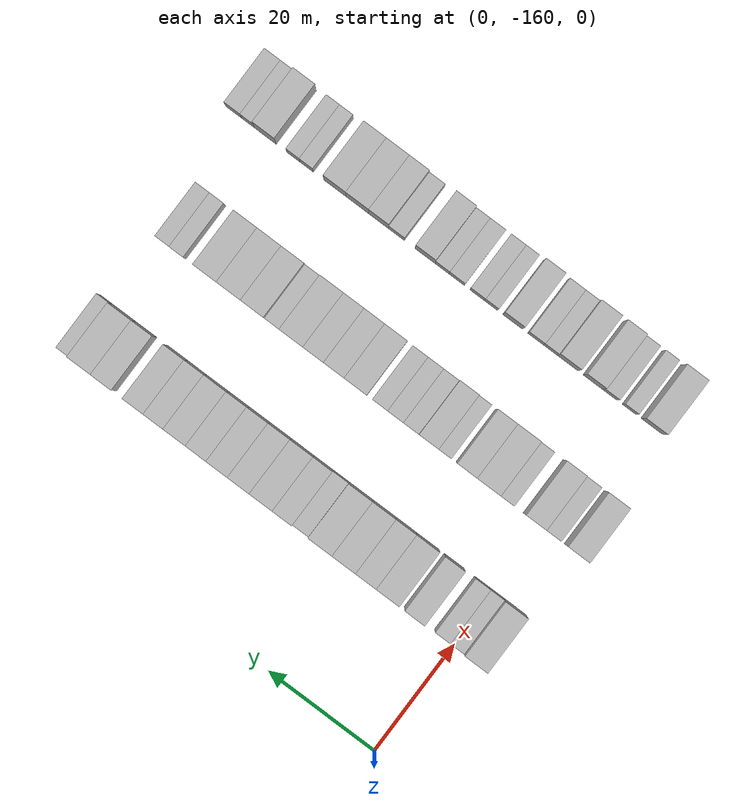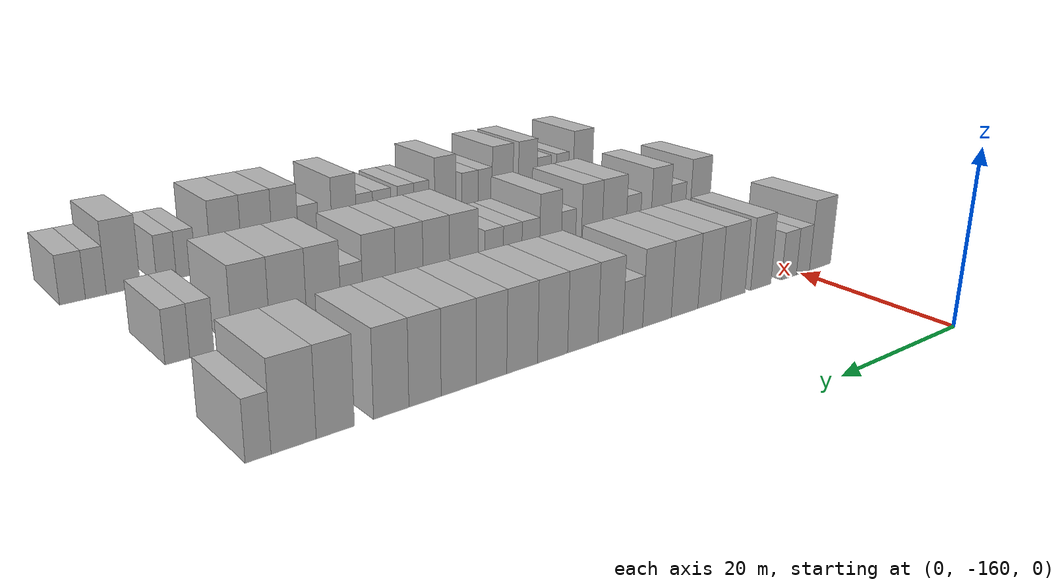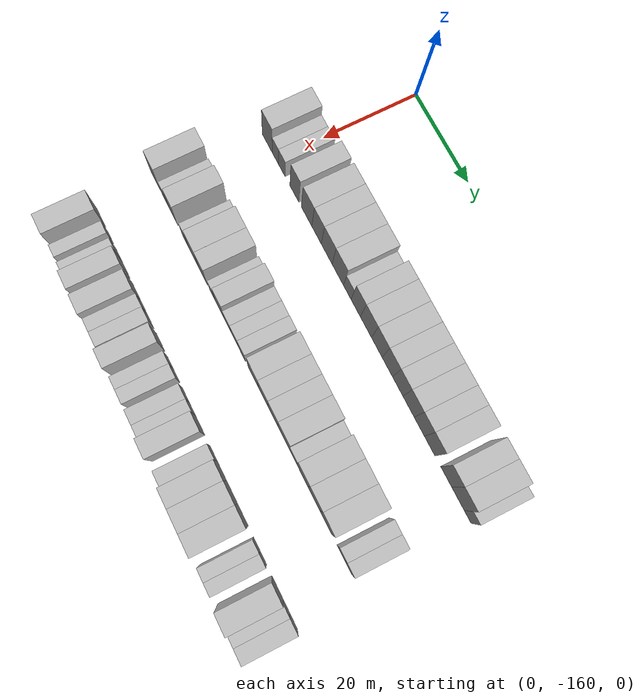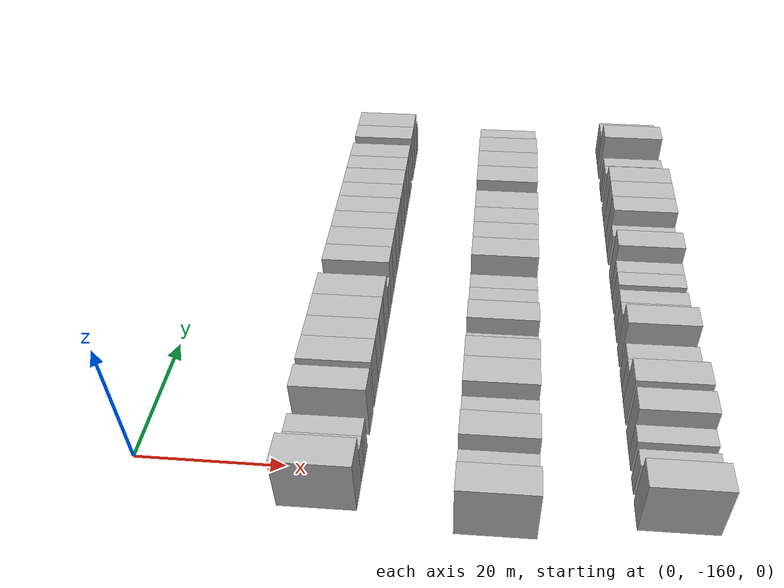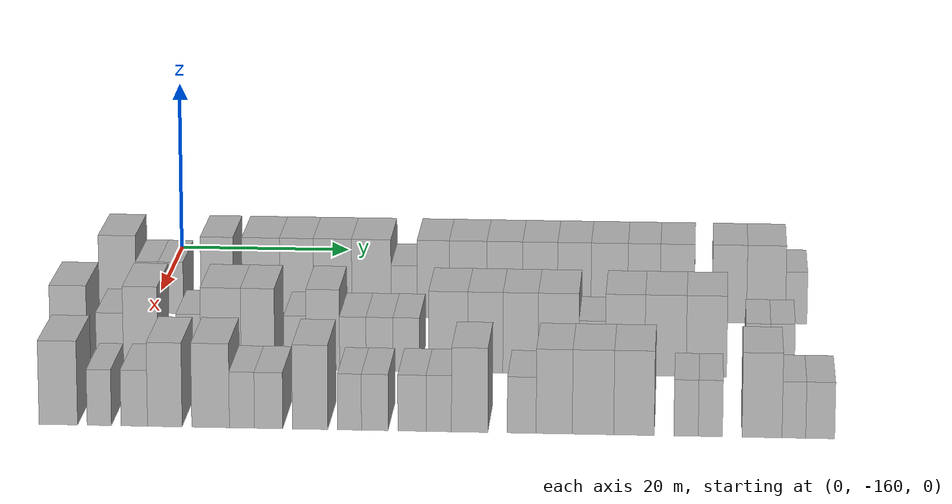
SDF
<sdf version="1.6">
 <world name="default">
  <model name="building_24">
   <static>1</static>
   <pose>25.0000 -163.7393 0 0.000000 0.000000 0.000000</pose>
   <link name="link">
    <pose>0 0 4.50 0 0 0</pose>
    <collision name="collision"><geometry><box><size>10.0000 4.2165 9.0000</size></box></geometry></collision>
    <visual name="visual">
     <cast_shadows>0</cast_shadows>
     <geometry><box><size>10.0000 4.2165 9.0000</size></box></geometry>
     <material>
      <script>
       <uri>model://HANNAS_wall/materials/scripts</uri>
       <uri>model://HANNAS_wall/materials/textures</uri>
       <name>vrc/HANNAS_wall</name>
      </script>
     </material>
    </visual>
   </link>
  </model>
  <model name="building_25">
   <static>1</static>
   <pose>25.0000 -160.3569 0 0.000000 0.000000 0.000000</pose>
   <link name="link">
    <pose>0 0 3.00 0 0 0</pose>
    <collision name="collision"><geometry><box><size>10.0000 2.5483 6.0000</size></box></geometry></collision>
    <visual name="visual">
     <cast_shadows>0</cast_shadows>
     <geometry><box><size>10.0000 2.5483 6.0000</size></box></geometry>
     <material>
      <script>
       <uri>model://HANNAS_wall/materials/scripts</uri>
       <uri>model://HANNAS_wall/materials/textures</uri>
       <name>vrc/HANNAS_wall</name>
      </script>
     </material>
    </visual>
   </link>
  </model>
  <model name="building_26">
   <static>1</static>
   <pose>25.0000 -157.6715 0 0.000000 0.000000 0.000000</pose>
   <link name="link">
    <pose>0 0 3.00 0 0 0</pose>
    <collision name="collision"><geometry><box><size>10.0000 2.8223 6.0000</size></box></geometry></collision>
    <visual name="visual">
     <cast_shadows>0</cast_shadows>
     <geometry><box><size>10.0000 2.8223 6.0000</size></box></geometry>
     <material>
      <script>
       <uri>model://HANNAS_wall/materials/scripts</uri>
       <uri>model://HANNAS_wall/materials/textures</uri>
       <name>vrc/HANNAS_wall</name>
      </script>
     </material>
    </visual>
   </link>
  </model>
  <model name="building_27">
   <static>1</static>
   <pose>25.0000 -152.4122 0 0.000000 0.000000 0.000000</pose>
   <link name="link">
    <pose>0 0 4.50 0 0 0</pose>
    <collision name="collision"><geometry><box><size>10.0000 3.6963 9.0000</size></box></geometry></collision>
    <visual name="visual">
     <cast_shadows>0</cast_shadows>
     <geometry><box><size>10.0000 3.6963 9.0000</size></box></geometry>
     <material>
      <script>
       <uri>model://HANNAS_wall/materials/scripts</uri>
       <uri>model://HANNAS_wall/materials/textures</uri>
       <name>vrc/HANNAS_wall</name>
      </script>
     </material>
    </visual>
   </link>
  </model>
  <model name="building_28">
   <static>1</static>
   <pose>25.0000 -147.4266 0 0.000000 0.000000 0.000000</pose>
   <link name="link">
    <pose>0 0 4.50 0 0 0</pose>
    <collision name="collision"><geometry><box><size>10.0000 4.2749 9.0000</size></box></geometry></collision>
    <visual name="visual">
     <cast_shadows>0</cast_shadows>
     <geometry><box><size>10.0000 4.2749 9.0000</size></box></geometry>
     <material>
      <script>
       <uri>model://HANNAS_wall/materials/scripts</uri>
       <uri>model://HANNAS_wall/materials/textures</uri>
       <name>vrc/HANNAS_wall</name>
      </script>
     </material>
    </visual>
   </link>
  </model>
  <model name="building_29">
   <static>1</static>
   <pose>25.0000 -143.3866 0 0.000000 0.000000 0.000000</pose>
   <link name="link">
    <pose>0 0 4.50 0 0 0</pose>
    <collision name="collision"><geometry><box><size>10.0000 3.8051 9.0000</size></box></geometry></collision>
    <visual name="visual">
     <cast_shadows>0</cast_shadows>
     <geometry><box><size>10.0000 3.8051 9.0000</size></box></geometry>
     <material>
      <script>
       <uri>model://HANNAS_wall/materials/scripts</uri>
       <uri>model://HANNAS_wall/materials/textures</uri>
       <name>vrc/HANNAS_wall</name>
      </script>
     </material>
    </visual>
   </link>
  </model>
  <model name="building_30">
   <static>1</static>
   <pose>25.0000 -139.3176 0 0.000000 0.000000 0.000000</pose>
   <link name="link">
    <pose>0 0 4.50 0 0 0</pose>
    <collision name="collision"><geometry><box><size>10.0000 4.3330 9.0000</size></box></geometry></collision>
    <visual name="visual">
     <cast_shadows>0</cast_shadows>
     <geometry><box><size>10.0000 4.3330 9.0000</size></box></geometry>
     <material>
      <script>
       <uri>model://HANNAS_wall/materials/scripts</uri>
       <uri>model://HANNAS_wall/materials/textures</uri>
       <name>vrc/HANNAS_wall</name>
      </script>
     </material>
    </visual>
   </link>
  </model>
  <model name="building_31">
   <static>1</static>
   <pose>25.0000 -134.9347 0 0.000000 0.000000 0.000000</pose>
   <link name="link">
    <pose>0 0 4.50 0 0 0</pose>
    <collision name="collision"><geometry><box><size>10.0000 4.4328 9.0000</size></box></geometry></collision>
    <visual name="visual">
     <cast_shadows>0</cast_shadows>
     <geometry><box><size>10.0000 4.4328 9.0000</size></box></geometry>
     <material>
      <script>
       <uri>model://HANNAS_wall/materials/scripts</uri>
       <uri>model://HANNAS_wall/materials/textures</uri>
       <name>vrc/HANNAS_wall</name>
      </script>
     </material>
    </visual>
   </link>
  </model>
  <model name="building_32">
   <static>1</static>
   <pose>25.0000 -131.2357 0 0.000000 0.000000 0.000000</pose>
   <link name="link">
    <pose>0 0 3.00 0 0 0</pose>
    <collision name="collision"><geometry><box><size>10.0000 2.9652 6.0000</size></box></geometry></collision>
    <visual name="visual">
     <cast_shadows>0</cast_shadows>
     <geometry><box><size>10.0000 2.9652 6.0000</size></box></geometry>
     <material>
      <script>
       <uri>model://HANNAS_wall/materials/scripts</uri>
       <uri>model://HANNAS_wall/materials/textures</uri>
       <name>vrc/HANNAS_wall</name>
      </script>
     </material>
    </visual>
   </link>
  </model>
  <model name="building_33">
   <static>1</static>
   <pose>25.0000 -127.9492 0 0.000000 0.000000 0.000000</pose>
   <link name="link">
    <pose>0 0 4.50 0 0 0</pose>
    <collision name="collision"><geometry><box><size>10.0000 3.6078 9.0000</size></box></geometry></collision>
    <visual name="visual">
     <cast_shadows>0</cast_shadows>
     <geometry><box><size>10.0000 3.6078 9.0000</size></box></geometry>
     <material>
      <script>
       <uri>model://HANNAS_wall/materials/scripts</uri>
       <uri>model://HANNAS_wall/materials/textures</uri>
       <name>vrc/HANNAS_wall</name>
      </script>
     </material>
    </visual>
   </link>
  </model>
  <model name="building_34">
   <static>1</static>
   <pose>25.0000 -124.0263 0 0.000000 0.000000 0.000000</pose>
   <link name="link">
    <pose>0 0 4.50 0 0 0</pose>
    <collision name="collision"><geometry><box><size>10.0000 4.2380 9.0000</size></box></geometry></collision>
    <visual name="visual">
     <cast_shadows>0</cast_shadows>
     <geometry><box><size>10.0000 4.2380 9.0000</size></box></geometry>
     <material>
      <script>
       <uri>model://HANNAS_wall/materials/scripts</uri>
       <uri>model://HANNAS_wall/materials/textures</uri>
       <name>vrc/HANNAS_wall</name>
      </script>
     </material>
    </visual>
   </link>
  </model>
  <model name="building_35">
   <static>1</static>
   <pose>25.0000 -119.8935 0 0.000000 0.000000 0.000000</pose>
   <link name="link">
    <pose>0 0 4.50 0 0 0</pose>
    <collision name="collision"><geometry><box><size>10.0000 4.0276 9.0000</size></box></geometry></collision>
    <visual name="visual">
     <cast_shadows>0</cast_shadows>
     <geometry><box><size>10.0000 4.0276 9.0000</size></box></geometry>
     <material>
      <script>
       <uri>model://HANNAS_wall/materials/scripts</uri>
       <uri>model://HANNAS_wall/materials/textures</uri>
       <name>vrc/HANNAS_wall</name>
      </script>
     </material>
    </visual>
   </link>
  </model>
  <model name="building_36">
   <static>1</static>
   <pose>25.0000 -115.9105 0 0.000000 0.000000 0.000000</pose>
   <link name="link">
    <pose>0 0 4.50 0 0 0</pose>
    <collision name="collision"><geometry><box><size>10.0000 3.9385 9.0000</size></box></geometry></collision>
    <visual name="visual">
     <cast_shadows>0</cast_shadows>
     <geometry><box><size>10.0000 3.9385 9.0000</size></box></geometry>
     <material>
      <script>
       <uri>model://HANNAS_wall/materials/scripts</uri>
       <uri>model://HANNAS_wall/materials/textures</uri>
       <name>vrc/HANNAS_wall</name>
      </script>
     </material>
    </visual>
   </link>
  </model>
  <model name="building_37">
   <static>1</static>
   <pose>25.0000 -112.0548 0 0.000000 0.000000 0.000000</pose>
   <link name="link">
    <pose>0 0 4.50 0 0 0</pose>
    <collision name="collision"><geometry><box><size>10.0000 3.7729 9.0000</size></box></geometry></collision>
    <visual name="visual">
     <cast_shadows>0</cast_shadows>
     <geometry><box><size>10.0000 3.7729 9.0000</size></box></geometry>
     <material>
      <script>
       <uri>model://HANNAS_wall/materials/scripts</uri>
       <uri>model://HANNAS_wall/materials/textures</uri>
       <name>vrc/HANNAS_wall</name>
      </script>
     </material>
    </visual>
   </link>
  </model>
  <model name="building_38">
   <static>1</static>
   <pose>25.0000 -108.1041 0 0.000000 0.000000 0.000000</pose>
   <link name="link">
    <pose>0 0 4.50 0 0 0</pose>
    <collision name="collision"><geometry><box><size>10.0000 4.1284 9.0000</size></box></geometry></collision>
    <visual name="visual">
     <cast_shadows>0</cast_shadows>
     <geometry><box><size>10.0000 4.1284 9.0000</size></box></geometry>
     <material>
      <script>
       <uri>model://HANNAS_wall/materials/scripts</uri>
       <uri>model://HANNAS_wall/materials/textures</uri>
       <name>vrc/HANNAS_wall</name>
      </script>
     </material>
    </visual>
   </link>
  </model>
  <model name="building_39">
   <static>1</static>
   <pose>25.0000 -104.2180 0 0.000000 0.000000 0.000000</pose>
   <link name="link">
    <pose>0 0 4.50 0 0 0</pose>
    <collision name="collision"><geometry><box><size>10.0000 3.6439 9.0000</size></box></geometry></collision>
    <visual name="visual">
     <cast_shadows>0</cast_shadows>
     <geometry><box><size>10.0000 3.6439 9.0000</size></box></geometry>
     <material>
      <script>
       <uri>model://HANNAS_wall/materials/scripts</uri>
       <uri>model://HANNAS_wall/materials/textures</uri>
       <name>vrc/HANNAS_wall</name>
      </script>
     </material>
    </visual>
   </link>
  </model>
  <model name="building_40">
   <static>1</static>
   <pose>25.0000 -100.4765 0 0.000000 0.000000 0.000000</pose>
   <link name="link">
    <pose>0 0 4.50 0 0 0</pose>
    <collision name="collision"><geometry><box><size>10.0000 3.8391 9.0000</size></box></geometry></collision>
    <visual name="visual">
     <cast_shadows>0</cast_shadows>
     <geometry><box><size>10.0000 3.8391 9.0000</size></box></geometry>
     <material>
      <script>
       <uri>model://HANNAS_wall/materials/scripts</uri>
       <uri>model://HANNAS_wall/materials/textures</uri>
       <name>vrc/HANNAS_wall</name>
      </script>
     </material>
    </visual>
   </link>
  </model>
  <model name="building_41">
   <static>1</static>
   <pose>25.0000 -94.6228 0 0.000000 0.000000 0.000000</pose>
   <link name="link">
    <pose>0 0 4.50 0 0 0</pose>
    <collision name="collision"><geometry><box><size>10.0000 3.8683 9.0000</size></box></geometry></collision>
    <visual name="visual">
     <cast_shadows>0</cast_shadows>
     <geometry><box><size>10.0000 3.8683 9.0000</size></box></geometry>
     <material>
      <script>
       <uri>model://HANNAS_wall/materials/scripts</uri>
       <uri>model://HANNAS_wall/materials/textures</uri>
       <name>vrc/HANNAS_wall</name>
      </script>
     </material>
    </visual>
   </link>
  </model>
  <model name="building_42">
   <static>1</static>
   <pose>25.0000 -90.5126 0 0.000000 0.000000 0.000000</pose>
   <link name="link">
    <pose>0 0 4.50 0 0 0</pose>
    <collision name="collision"><geometry><box><size>10.0000 4.3520 9.0000</size></box></geometry></collision>
    <visual name="visual">
     <cast_shadows>0</cast_shadows>
     <geometry><box><size>10.0000 4.3520 9.0000</size></box></geometry>
     <material>
      <script>
       <uri>model://HANNAS_wall/materials/scripts</uri>
       <uri>model://HANNAS_wall/materials/textures</uri>
       <name>vrc/HANNAS_wall</name>
      </script>
     </material>
    </visual>
   </link>
  </model>
  <model name="building_43">
   <static>1</static>
   <pose>25.0000 -87.1313 0 0.000000 0.000000 0.000000</pose>
   <link name="link">
    <pose>0 0 3.00 0 0 0</pose>
    <collision name="collision"><geometry><box><size>10.0000 2.4106 6.0000</size></box></geometry></collision>
    <visual name="visual">
     <cast_shadows>0</cast_shadows>
     <geometry><box><size>10.0000 2.4106 6.0000</size></box></geometry>
     <material>
      <script>
       <uri>model://HANNAS_wall/materials/scripts</uri>
       <uri>model://HANNAS_wall/materials/textures</uri>
       <name>vrc/HANNAS_wall</name>
      </script>
     </material>
    </visual>
   </link>
  </model>
  <model name="building_149">
   <static>1</static>
   <pose>47.0000 -166.1068 0 0.000000 0.000000 0.000000</pose>
   <link name="link">
    <pose>0 0 4.50 0 0 0</pose>
    <collision name="collision"><geometry><box><size>10.0000 4.0091 9.0000</size></box></geometry></collision>
    <visual name="visual">
     <cast_shadows>0</cast_shadows>
     <geometry><box><size>10.0000 4.0091 9.0000</size></box></geometry>
     <material>
      <script>
       <uri>model://HANNAS_wall/materials/scripts</uri>
       <uri>model://HANNAS_wall/materials/textures</uri>
       <name>vrc/HANNAS_wall</name>
      </script>
     </material>
    </visual>
   </link>
  </model>
  <model name="building_150">
   <static>1</static>
   <pose>47.0000 -161.6256 0 0.000000 0.000000 0.000000</pose>
   <link name="link">
    <pose>0 0 3.00 0 0 0</pose>
    <collision name="collision"><geometry><box><size>10.0000 2.9534 6.0000</size></box></geometry></collision>
    <visual name="visual">
     <cast_shadows>0</cast_shadows>
     <geometry><box><size>10.0000 2.9534 6.0000</size></box></geometry>
     <material>
      <script>
       <uri>model://HANNAS_wall/materials/scripts</uri>
       <uri>model://HANNAS_wall/materials/textures</uri>
       <name>vrc/HANNAS_wall</name>
      </script>
     </material>
    </visual>
   </link>
  </model>
  <model name="building_151">
   <static>1</static>
   <pose>47.0000 -158.2668 0 0.000000 0.000000 0.000000</pose>
   <link name="link">
    <pose>0 0 4.50 0 0 0</pose>
    <collision name="collision"><geometry><box><size>10.0000 3.7643 9.0000</size></box></geometry></collision>
    <visual name="visual">
     <cast_shadows>0</cast_shadows>
     <geometry><box><size>10.0000 3.7643 9.0000</size></box></geometry>
     <material>
      <script>
       <uri>model://HANNAS_wall/materials/scripts</uri>
       <uri>model://HANNAS_wall/materials/textures</uri>
       <name>vrc/HANNAS_wall</name>
      </script>
     </material>
    </visual>
   </link>
  </model>
  <model name="building_152">
   <static>1</static>
   <pose>47.0000 -153.0513 0 0.000000 0.000000 0.000000</pose>
   <link name="link">
    <pose>0 0 3.00 0 0 0</pose>
    <collision name="collision"><geometry><box><size>10.0000 2.6667 6.0000</size></box></geometry></collision>
    <visual name="visual">
     <cast_shadows>0</cast_shadows>
     <geometry><box><size>10.0000 2.6667 6.0000</size></box></geometry>
     <material>
      <script>
       <uri>model://HANNAS_wall/materials/scripts</uri>
       <uri>model://HANNAS_wall/materials/textures</uri>
       <name>vrc/HANNAS_wall</name>
      </script>
     </material>
    </visual>
   </link>
  </model>
  <model name="building_153">
   <static>1</static>
   <pose>47.0000 -149.5357 0 0.000000 0.000000 0.000000</pose>
   <link name="link">
    <pose>0 0 4.50 0 0 0</pose>
    <collision name="collision"><geometry><box><size>10.0000 4.3645 9.0000</size></box></geometry></collision>
    <visual name="visual">
     <cast_shadows>0</cast_shadows>
     <geometry><box><size>10.0000 4.3645 9.0000</size></box></geometry>
     <material>
      <script>
       <uri>model://HANNAS_wall/materials/scripts</uri>
       <uri>model://HANNAS_wall/materials/textures</uri>
       <name>vrc/HANNAS_wall</name>
      </script>
     </material>
    </visual>
   </link>
  </model>
  <model name="building_154">
   <static>1</static>
   <pose>47.0000 -145.5294 0 0.000000 0.000000 0.000000</pose>
   <link name="link">
    <pose>0 0 4.50 0 0 0</pose>
    <collision name="collision"><geometry><box><size>10.0000 3.6480 9.0000</size></box></geometry></collision>
    <visual name="visual">
     <cast_shadows>0</cast_shadows>
     <geometry><box><size>10.0000 3.6480 9.0000</size></box></geometry>
     <material>
      <script>
       <uri>model://HANNAS_wall/materials/scripts</uri>
       <uri>model://HANNAS_wall/materials/textures</uri>
       <name>vrc/HANNAS_wall</name>
      </script>
     </material>
    </visual>
   </link>
  </model>
  <model name="building_155">
   <static>1</static>
   <pose>47.0000 -141.4897 0 0.000000 0.000000 0.000000</pose>
   <link name="link">
    <pose>0 0 3.00 0 0 0</pose>
    <collision name="collision"><geometry><box><size>10.0000 2.4312 6.0000</size></box></geometry></collision>
    <visual name="visual">
     <cast_shadows>0</cast_shadows>
     <geometry><box><size>10.0000 2.4312 6.0000</size></box></geometry>
     <material>
      <script>
       <uri>model://HANNAS_wall/materials/scripts</uri>
       <uri>model://HANNAS_wall/materials/textures</uri>
       <name>vrc/HANNAS_wall</name>
      </script>
     </material>
    </visual>
   </link>
  </model>
  <model name="building_156">
   <static>1</static>
   <pose>47.0000 -138.4733 0 0.000000 0.000000 0.000000</pose>
   <link name="link">
    <pose>0 0 4.50 0 0 0</pose>
    <collision name="collision"><geometry><box><size>10.0000 3.6016 9.0000</size></box></geometry></collision>
    <visual name="visual">
     <cast_shadows>0</cast_shadows>
     <geometry><box><size>10.0000 3.6016 9.0000</size></box></geometry>
     <material>
      <script>
       <uri>model://HANNAS_wall/materials/scripts</uri>
       <uri>model://HANNAS_wall/materials/textures</uri>
       <name>vrc/HANNAS_wall</name>
      </script>
     </material>
    </visual>
   </link>
  </model>
  <model name="building_157">
   <static>1</static>
   <pose>47.0000 -135.2357 0 0.000000 0.000000 0.000000</pose>
   <link name="link">
    <pose>0 0 3.00 0 0 0</pose>
    <collision name="collision"><geometry><box><size>10.0000 2.8735 6.0000</size></box></geometry></collision>
    <visual name="visual">
     <cast_shadows>0</cast_shadows>
     <geometry><box><size>10.0000 2.8735 6.0000</size></box></geometry>
     <material>
      <script>
       <uri>model://HANNAS_wall/materials/scripts</uri>
       <uri>model://HANNAS_wall/materials/textures</uri>
       <name>vrc/HANNAS_wall</name>
      </script>
     </material>
    </visual>
   </link>
  </model>
  <model name="building_158">
   <static>1</static>
   <pose>47.0000 -132.3403 0 0.000000 0.000000 0.000000</pose>
   <link name="link">
    <pose>0 0 3.00 0 0 0</pose>
    <collision name="collision"><geometry><box><size>10.0000 2.9173 6.0000</size></box></geometry></collision>
    <visual name="visual">
     <cast_shadows>0</cast_shadows>
     <geometry><box><size>10.0000 2.9173 6.0000</size></box></geometry>
     <material>
      <script>
       <uri>model://HANNAS_wall/materials/scripts</uri>
       <uri>model://HANNAS_wall/materials/textures</uri>
       <name>vrc/HANNAS_wall</name>
      </script>
     </material>
    </visual>
   </link>
  </model>
  <model name="building_159">
   <static>1</static>
   <pose>47.0000 -129.4545 0 0.000000 0.000000 0.000000</pose>
   <link name="link">
    <pose>0 0 3.00 0 0 0</pose>
    <collision name="collision"><geometry><box><size>10.0000 2.8545 6.0000</size></box></geometry></collision>
    <visual name="visual">
     <cast_shadows>0</cast_shadows>
     <geometry><box><size>10.0000 2.8545 6.0000</size></box></geometry>
     <material>
      <script>
       <uri>model://HANNAS_wall/materials/scripts</uri>
       <uri>model://HANNAS_wall/materials/textures</uri>
       <name>vrc/HANNAS_wall</name>
      </script>
     </material>
    </visual>
   </link>
  </model>
  <model name="building_160">
   <static>1</static>
   <pose>47.0000 -124.9225 0 0.000000 0.000000 0.000000</pose>
   <link name="link">
    <pose>0 0 4.50 0 0 0</pose>
    <collision name="collision"><geometry><box><size>10.0000 4.2095 9.0000</size></box></geometry></collision>
    <visual name="visual">
     <cast_shadows>0</cast_shadows>
     <geometry><box><size>10.0000 4.2095 9.0000</size></box></geometry>
     <material>
      <script>
       <uri>model://HANNAS_wall/materials/scripts</uri>
       <uri>model://HANNAS_wall/materials/textures</uri>
       <name>vrc/HANNAS_wall</name>
      </script>
     </material>
    </visual>
   </link>
  </model>
  <model name="building_161">
   <static>1</static>
   <pose>47.0000 -120.9241 0 0.000000 0.000000 0.000000</pose>
   <link name="link">
    <pose>0 0 4.50 0 0 0</pose>
    <collision name="collision"><geometry><box><size>10.0000 3.7872 9.0000</size></box></geometry></collision>
    <visual name="visual">
     <cast_shadows>0</cast_shadows>
     <geometry><box><size>10.0000 3.7872 9.0000</size></box></geometry>
     <material>
      <script>
       <uri>model://HANNAS_wall/materials/scripts</uri>
       <uri>model://HANNAS_wall/materials/textures</uri>
       <name>vrc/HANNAS_wall</name>
      </script>
     </material>
    </visual>
   </link>
  </model>
  <model name="building_162">
   <static>1</static>
   <pose>47.0000 -117.1334 0 0.000000 0.000000 0.000000</pose>
   <link name="link">
    <pose>0 0 4.50 0 0 0</pose>
    <collision name="collision"><geometry><box><size>10.0000 3.7942 9.0000</size></box></geometry></collision>
    <visual name="visual">
     <cast_shadows>0</cast_shadows>
     <geometry><box><size>10.0000 3.7942 9.0000</size></box></geometry>
     <material>
      <script>
       <uri>model://HANNAS_wall/materials/scripts</uri>
       <uri>model://HANNAS_wall/materials/textures</uri>
       <name>vrc/HANNAS_wall</name>
      </script>
     </material>
    </visual>
   </link>
  </model>
  <model name="building_163">
   <static>1</static>
   <pose>47.0000 -113.0435 0 0.000000 0.000000 0.000000</pose>
   <link name="link">
    <pose>0 0 4.50 0 0 0</pose>
    <collision name="collision"><geometry><box><size>10.0000 4.3855 9.0000</size></box></geometry></collision>
    <visual name="visual">
     <cast_shadows>0</cast_shadows>
     <geometry><box><size>10.0000 4.3855 9.0000</size></box></geometry>
     <material>
      <script>
       <uri>model://HANNAS_wall/materials/scripts</uri>
       <uri>model://HANNAS_wall/materials/textures</uri>
       <name>vrc/HANNAS_wall</name>
      </script>
     </material>
    </visual>
   </link>
  </model>
  <model name="building_164">
   <static>1</static>
   <pose>47.0000 -109.4272 0 0.000000 0.000000 0.000000</pose>
   <link name="link">
    <pose>0 0 3.00 0 0 0</pose>
    <collision name="collision"><geometry><box><size>10.0000 2.8473 6.0000</size></box></geometry></collision>
    <visual name="visual">
     <cast_shadows>0</cast_shadows>
     <geometry><box><size>10.0000 2.8473 6.0000</size></box></geometry>
     <material>
      <script>
       <uri>model://HANNAS_wall/materials/scripts</uri>
       <uri>model://HANNAS_wall/materials/textures</uri>
       <name>vrc/HANNAS_wall</name>
      </script>
     </material>
    </visual>
   </link>
  </model>
  <model name="building_165">
   <static>1</static>
   <pose>47.0000 -105.8783 0 0.000000 0.000000 0.000000</pose>
   <link name="link">
    <pose>0 0 4.50 0 0 0</pose>
    <collision name="collision"><geometry><box><size>10.0000 4.2505 9.0000</size></box></geometry></collision>
    <visual name="visual">
     <cast_shadows>0</cast_shadows>
     <geometry><box><size>10.0000 4.2505 9.0000</size></box></geometry>
     <material>
      <script>
       <uri>model://HANNAS_wall/materials/scripts</uri>
       <uri>model://HANNAS_wall/materials/textures</uri>
       <name>vrc/HANNAS_wall</name>
      </script>
     </material>
    </visual>
   </link>
  </model>
  <model name="building_166">
   <static>1</static>
   <pose>47.0000 -101.5323 0 0.000000 0.000000 0.000000</pose>
   <link name="link">
    <pose>0 0 4.50 0 0 0</pose>
    <collision name="collision"><geometry><box><size>10.0000 4.4415 9.0000</size></box></geometry></collision>
    <visual name="visual">
     <cast_shadows>0</cast_shadows>
     <geometry><box><size>10.0000 4.4415 9.0000</size></box></geometry>
     <material>
      <script>
       <uri>model://HANNAS_wall/materials/scripts</uri>
       <uri>model://HANNAS_wall/materials/textures</uri>
       <name>vrc/HANNAS_wall</name>
      </script>
     </material>
    </visual>
   </link>
  </model>
  <model name="building_167">
   <static>1</static>
   <pose>47.0000 -97.1389 0 0.000000 0.000000 0.000000</pose>
   <link name="link">
    <pose>0 0 4.50 0 0 0</pose>
    <collision name="collision"><geometry><box><size>10.0000 4.3454 9.0000</size></box></geometry></collision>
    <visual name="visual">
     <cast_shadows>0</cast_shadows>
     <geometry><box><size>10.0000 4.3454 9.0000</size></box></geometry>
     <material>
      <script>
       <uri>model://HANNAS_wall/materials/scripts</uri>
       <uri>model://HANNAS_wall/materials/textures</uri>
       <name>vrc/HANNAS_wall</name>
      </script>
     </material>
    </visual>
   </link>
  </model>
  <model name="building_168">
   <static>1</static>
   <pose>47.0000 -91.6483 0 0.000000 0.000000 0.000000</pose>
   <link name="link">
    <pose>0 0 3.00 0 0 0</pose>
    <collision name="collision"><geometry><box><size>10.0000 2.6358 6.0000</size></box></geometry></collision>
    <visual name="visual">
     <cast_shadows>0</cast_shadows>
     <geometry><box><size>10.0000 2.6358 6.0000</size></box></geometry>
     <material>
      <script>
       <uri>model://HANNAS_wall/materials/scripts</uri>
       <uri>model://HANNAS_wall/materials/textures</uri>
       <name>vrc/HANNAS_wall</name>
      </script>
     </material>
    </visual>
   </link>
  </model>
  <model name="building_169">
   <static>1</static>
   <pose>47.0000 -89.0202 0 0.000000 0.000000 0.000000</pose>
   <link name="link">
    <pose>0 0 3.00 0 0 0</pose>
    <collision name="collision"><geometry><box><size>10.0000 2.6204 6.0000</size></box></geometry></collision>
    <visual name="visual">
     <cast_shadows>0</cast_shadows>
     <geometry><box><size>10.0000 2.6204 6.0000</size></box></geometry>
     <material>
      <script>
       <uri>model://HANNAS_wall/materials/scripts</uri>
       <uri>model://HANNAS_wall/materials/textures</uri>
       <name>vrc/HANNAS_wall</name>
      </script>
     </material>
    </visual>
   </link>
  </model>
  <model name="building_271">
   <static>1</static>
   <pose>69.0000 -163.9866 0 0.000000 0.000000 0.000000</pose>
   <link name="link">
    <pose>0 0 4.50 0 0 0</pose>
    <collision name="collision"><geometry><box><size>10.0000 4.0088 9.0000</size></box></geometry></collision>
    <visual name="visual">
     <cast_shadows>0</cast_shadows>
     <geometry><box><size>10.0000 4.0088 9.0000</size></box></geometry>
     <material>
      <script>
       <uri>model://HANNAS_wall/materials/scripts</uri>
       <uri>model://HANNAS_wall/materials/textures</uri>
       <name>vrc/HANNAS_wall</name>
      </script>
     </material>
    </visual>
   </link>
  </model>
  <model name="building_272">
   <static>1</static>
   <pose>69.0000 -159.7208 0 0.000000 0.000000 0.000000</pose>
   <link name="link">
    <pose>0 0 3.00 0 0 0</pose>
    <collision name="collision"><geometry><box><size>10.0000 2.5230 6.0000</size></box></geometry></collision>
    <visual name="visual">
     <cast_shadows>0</cast_shadows>
     <geometry><box><size>10.0000 2.5230 6.0000</size></box></geometry>
     <material>
      <script>
       <uri>model://HANNAS_wall/materials/scripts</uri>
       <uri>model://HANNAS_wall/materials/textures</uri>
       <name>vrc/HANNAS_wall</name>
      </script>
     </material>
    </visual>
   </link>
  </model>
  <model name="building_273">
   <static>1</static>
   <pose>69.0000 -156.0854 0 0.000000 0.000000 0.000000</pose>
   <link name="link">
    <pose>0 0 3.00 0 0 0</pose>
    <collision name="collision"><geometry><box><size>10.0000 2.7477 6.0000</size></box></geometry></collision>
    <visual name="visual">
     <cast_shadows>0</cast_shadows>
     <geometry><box><size>10.0000 2.7477 6.0000</size></box></geometry>
     <material>
      <script>
       <uri>model://HANNAS_wall/materials/scripts</uri>
       <uri>model://HANNAS_wall/materials/textures</uri>
       <name>vrc/HANNAS_wall</name>
      </script>
     </material>
    </visual>
   </link>
  </model>
  <model name="building_274">
   <static>1</static>
   <pose>69.0000 -152.9113 0 0.000000 0.000000 0.000000</pose>
   <link name="link">
    <pose>0 0 4.50 0 0 0</pose>
    <collision name="collision"><geometry><box><size>10.0000 3.6006 9.0000</size></box></geometry></collision>
    <visual name="visual">
     <cast_shadows>0</cast_shadows>
     <geometry><box><size>10.0000 3.6006 9.0000</size></box></geometry>
     <material>
      <script>
       <uri>model://HANNAS_wall/materials/scripts</uri>
       <uri>model://HANNAS_wall/materials/textures</uri>
       <name>vrc/HANNAS_wall</name>
      </script>
     </material>
    </visual>
   </link>
  </model>
  <model name="building_275">
   <static>1</static>
   <pose>69.0000 -148.1607 0 0.000000 0.000000 0.000000</pose>
   <link name="link">
    <pose>0 0 4.50 0 0 0</pose>
    <collision name="collision"><geometry><box><size>10.0000 3.9004 9.0000</size></box></geometry></collision>
    <visual name="visual">
     <cast_shadows>0</cast_shadows>
     <geometry><box><size>10.0000 3.9004 9.0000</size></box></geometry>
     <material>
      <script>
       <uri>model://HANNAS_wall/materials/scripts</uri>
       <uri>model://HANNAS_wall/materials/textures</uri>
       <name>vrc/HANNAS_wall</name>
      </script>
     </material>
    </visual>
   </link>
  </model>
  <model name="building_276">
   <static>1</static>
   <pose>69.0000 -144.9085 0 0.000000 0.000000 0.000000</pose>
   <link name="link">
    <pose>0 0 3.00 0 0 0</pose>
    <collision name="collision"><geometry><box><size>10.0000 2.6039 6.0000</size></box></geometry></collision>
    <visual name="visual">
     <cast_shadows>0</cast_shadows>
     <geometry><box><size>10.0000 2.6039 6.0000</size></box></geometry>
     <material>
      <script>
       <uri>model://HANNAS_wall/materials/scripts</uri>
       <uri>model://HANNAS_wall/materials/textures</uri>
       <name>vrc/HANNAS_wall</name>
      </script>
     </material>
    </visual>
   </link>
  </model>
  <model name="building_277">
   <static>1</static>
   <pose>69.0000 -142.1445 0 0.000000 0.000000 0.000000</pose>
   <link name="link">
    <pose>0 0 3.00 0 0 0</pose>
    <collision name="collision"><geometry><box><size>10.0000 2.9242 6.0000</size></box></geometry></collision>
    <visual name="visual">
     <cast_shadows>0</cast_shadows>
     <geometry><box><size>10.0000 2.9242 6.0000</size></box></geometry>
     <material>
      <script>
       <uri>model://HANNAS_wall/materials/scripts</uri>
       <uri>model://HANNAS_wall/materials/textures</uri>
       <name>vrc/HANNAS_wall</name>
      </script>
     </material>
    </visual>
   </link>
  </model>
  <model name="building_278">
   <static>1</static>
   <pose>69.0000 -137.8465 0 0.000000 0.000000 0.000000</pose>
   <link name="link">
    <pose>0 0 4.50 0 0 0</pose>
    <collision name="collision"><geometry><box><size>10.0000 3.6718 9.0000</size></box></geometry></collision>
    <visual name="visual">
     <cast_shadows>0</cast_shadows>
     <geometry><box><size>10.0000 3.6718 9.0000</size></box></geometry>
     <material>
      <script>
       <uri>model://HANNAS_wall/materials/scripts</uri>
       <uri>model://HANNAS_wall/materials/textures</uri>
       <name>vrc/HANNAS_wall</name>
      </script>
     </material>
    </visual>
   </link>
  </model>
  <model name="building_279">
   <static>1</static>
   <pose>69.0000 -133.7771 0 0.000000 0.000000 0.000000</pose>
   <link name="link">
    <pose>0 0 3.00 0 0 0</pose>
    <collision name="collision"><geometry><box><size>10.0000 2.4670 6.0000</size></box></geometry></collision>
    <visual name="visual">
     <cast_shadows>0</cast_shadows>
     <geometry><box><size>10.0000 2.4670 6.0000</size></box></geometry>
     <material>
      <script>
       <uri>model://HANNAS_wall/materials/scripts</uri>
       <uri>model://HANNAS_wall/materials/textures</uri>
       <name>vrc/HANNAS_wall</name>
      </script>
     </material>
    </visual>
   </link>
  </model>
  <model name="building_280">
   <static>1</static>
   <pose>69.0000 -131.1667 0 0.000000 0.000000 0.000000</pose>
   <link name="link">
    <pose>0 0 3.00 0 0 0</pose>
    <collision name="collision"><geometry><box><size>10.0000 2.7538 6.0000</size></box></geometry></collision>
    <visual name="visual">
     <cast_shadows>0</cast_shadows>
     <geometry><box><size>10.0000 2.7538 6.0000</size></box></geometry>
     <material>
      <script>
       <uri>model://HANNAS_wall/materials/scripts</uri>
       <uri>model://HANNAS_wall/materials/textures</uri>
       <name>vrc/HANNAS_wall</name>
      </script>
     </material>
    </visual>
   </link>
  </model>
  <model name="building_281">
   <static>1</static>
   <pose>69.0000 -127.3319 0 0.000000 0.000000 0.000000</pose>
   <link name="link">
    <pose>0 0 3.00 0 0 0</pose>
    <collision name="collision"><geometry><box><size>10.0000 2.9158 6.0000</size></box></geometry></collision>
    <visual name="visual">
     <cast_shadows>0</cast_shadows>
     <geometry><box><size>10.0000 2.9158 6.0000</size></box></geometry>
     <material>
      <script>
       <uri>model://HANNAS_wall/materials/scripts</uri>
       <uri>model://HANNAS_wall/materials/textures</uri>
       <name>vrc/HANNAS_wall</name>
      </script>
     </material>
    </visual>
   </link>
  </model>
  <model name="building_282">
   <static>1</static>
   <pose>69.0000 -124.5681 0 0.000000 0.000000 0.000000</pose>
   <link name="link">
    <pose>0 0 3.00 0 0 0</pose>
    <collision name="collision"><geometry><box><size>10.0000 2.6117 6.0000</size></box></geometry></collision>
    <visual name="visual">
     <cast_shadows>0</cast_shadows>
     <geometry><box><size>10.0000 2.6117 6.0000</size></box></geometry>
     <material>
      <script>
       <uri>model://HANNAS_wall/materials/scripts</uri>
       <uri>model://HANNAS_wall/materials/textures</uri>
       <name>vrc/HANNAS_wall</name>
      </script>
     </material>
    </visual>
   </link>
  </model>
  <model name="building_283">
   <static>1</static>
   <pose>69.0000 -121.3856 0 0.000000 0.000000 0.000000</pose>
   <link name="link">
    <pose>0 0 4.50 0 0 0</pose>
    <collision name="collision"><geometry><box><size>10.0000 3.7533 9.0000</size></box></geometry></collision>
    <visual name="visual">
     <cast_shadows>0</cast_shadows>
     <geometry><box><size>10.0000 3.7533 9.0000</size></box></geometry>
     <material>
      <script>
       <uri>model://HANNAS_wall/materials/scripts</uri>
       <uri>model://HANNAS_wall/materials/textures</uri>
       <name>vrc/HANNAS_wall</name>
      </script>
     </material>
    </visual>
   </link>
  </model>
  <model name="building_284">
   <static>1</static>
   <pose>69.0000 -116.0279 0 0.000000 0.000000 0.000000</pose>
   <link name="link">
    <pose>0 0 3.00 0 0 0</pose>
    <collision name="collision"><geometry><box><size>10.0000 2.9621 6.0000</size></box></geometry></collision>
    <visual name="visual">
     <cast_shadows>0</cast_shadows>
     <geometry><box><size>10.0000 2.9621 6.0000</size></box></geometry>
     <material>
      <script>
       <uri>model://HANNAS_wall/materials/scripts</uri>
       <uri>model://HANNAS_wall/materials/textures</uri>
       <name>vrc/HANNAS_wall</name>
      </script>
     </material>
    </visual>
   </link>
  </model>
  <model name="building_285">
   <static>1</static>
   <pose>69.0000 -112.6857 0 0.000000 0.000000 0.000000</pose>
   <link name="link">
    <pose>0 0 4.50 0 0 0</pose>
    <collision name="collision"><geometry><box><size>10.0000 3.7223 9.0000</size></box></geometry></collision>
    <visual name="visual">
     <cast_shadows>0</cast_shadows>
     <geometry><box><size>10.0000 3.7223 9.0000</size></box></geometry>
     <material>
      <script>
       <uri>model://HANNAS_wall/materials/scripts</uri>
       <uri>model://HANNAS_wall/materials/textures</uri>
       <name>vrc/HANNAS_wall</name>
      </script>
     </material>
    </visual>
   </link>
  </model>
  <model name="building_286">
   <static>1</static>
   <pose>69.0000 -108.6994 0 0.000000 0.000000 0.000000</pose>
   <link name="link">
    <pose>0 0 4.50 0 0 0</pose>
    <collision name="collision"><geometry><box><size>10.0000 4.2505 9.0000</size></box></geometry></collision>
    <visual name="visual">
     <cast_shadows>0</cast_shadows>
     <geometry><box><size>10.0000 4.2505 9.0000</size></box></geometry>
     <material>
      <script>
       <uri>model://HANNAS_wall/materials/scripts</uri>
       <uri>model://HANNAS_wall/materials/textures</uri>
       <name>vrc/HANNAS_wall</name>
      </script>
     </material>
    </visual>
   </link>
  </model>
  <model name="building_287">
   <static>1</static>
   <pose>69.0000 -104.4980 0 0.000000 0.000000 0.000000</pose>
   <link name="link">
    <pose>0 0 4.50 0 0 0</pose>
    <collision name="collision"><geometry><box><size>10.0000 4.1524 9.0000</size></box></geometry></collision>
    <visual name="visual">
     <cast_shadows>0</cast_shadows>
     <geometry><box><size>10.0000 4.1524 9.0000</size></box></geometry>
     <material>
      <script>
       <uri>model://HANNAS_wall/materials/scripts</uri>
       <uri>model://HANNAS_wall/materials/textures</uri>
       <name>vrc/HANNAS_wall</name>
      </script>
     </material>
    </visual>
   </link>
  </model>
  <model name="building_288">
   <static>1</static>
   <pose>69.0000 -99.1708 0 0.000000 0.000000 0.000000</pose>
   <link name="link">
    <pose>0 0 3.00 0 0 0</pose>
    <collision name="collision"><geometry><box><size>10.0000 2.5019 6.0000</size></box></geometry></collision>
    <visual name="visual">
     <cast_shadows>0</cast_shadows>
     <geometry><box><size>10.0000 2.5019 6.0000</size></box></geometry>
     <material>
      <script>
       <uri>model://HANNAS_wall/materials/scripts</uri>
       <uri>model://HANNAS_wall/materials/textures</uri>
       <name>vrc/HANNAS_wall</name>
      </script>
     </material>
    </visual>
   </link>
  </model>
  <model name="building_289">
   <static>1</static>
   <pose>69.0000 -96.6801 0 0.000000 0.000000 0.000000</pose>
   <link name="link">
    <pose>0 0 3.00 0 0 0</pose>
    <collision name="collision"><geometry><box><size>10.0000 2.4796 6.0000</size></box></geometry></collision>
    <visual name="visual">
     <cast_shadows>0</cast_shadows>
     <geometry><box><size>10.0000 2.4796 6.0000</size></box></geometry>
     <material>
      <script>
       <uri>model://HANNAS_wall/materials/scripts</uri>
       <uri>model://HANNAS_wall/materials/textures</uri>
       <name>vrc/HANNAS_wall</name>
      </script>
     </material>
    </visual>
   </link>
  </model>
  <model name="building_290">
   <static>1</static>
   <pose>69.0000 -91.4008 0 0.000000 0.000000 0.000000</pose>
   <link name="link">
    <pose>0 0 4.50 0 0 0</pose>
    <collision name="collision"><geometry><box><size>10.0000 4.0789 9.0000</size></box></geometry></collision>
    <visual name="visual">
     <cast_shadows>0</cast_shadows>
     <geometry><box><size>10.0000 4.0789 9.0000</size></box></geometry>
     <material>
      <script>
       <uri>model://HANNAS_wall/materials/scripts</uri>
       <uri>model://HANNAS_wall/materials/textures</uri>
       <name>vrc/HANNAS_wall</name>
      </script>
     </material>
    </visual>
   </link>
  </model>
  <model name="building_291">
   <static>1</static>
   <pose>69.0000 -88.1495 0 0.000000 0.000000 0.000000</pose>
   <link name="link">
    <pose>0 0 3.00 0 0 0</pose>
    <collision name="collision"><geometry><box><size>10.0000 2.4237 6.0000</size></box></geometry></collision>
    <visual name="visual">
     <cast_shadows>0</cast_shadows>
     <geometry><box><size>10.0000 2.4237 6.0000</size></box></geometry>
     <material>
      <script>
       <uri>model://HANNAS_wall/materials/scripts</uri>
       <uri>model://HANNAS_wall/materials/textures</uri>
       <name>vrc/HANNAS_wall</name>
      </script>
     </material>
    </visual>
   </link>
  </model>
  <model name="building_292">
   <static>1</static>
   <pose>69.0000 -85.4620 0 0.000000 0.000000 0.000000</pose>
   <link name="link">
    <pose>0 0 3.00 0 0 0</pose>
    <collision name="collision"><geometry><box><size>10.0000 2.9514 6.0000</size></box></geometry></collision>
    <visual name="visual">
     <cast_shadows>0</cast_shadows>
     <geometry><box><size>10.0000 2.9514 6.0000</size></box></geometry>
     <material>
      <script>
       <uri>model://HANNAS_wall/materials/scripts</uri>
       <uri>model://HANNAS_wall/materials/textures</uri>
       <name>vrc/HANNAS_wall</name>
      </script>
     </material>
    </visual>
   </link>
  </model>
 </world>
</sdf>
